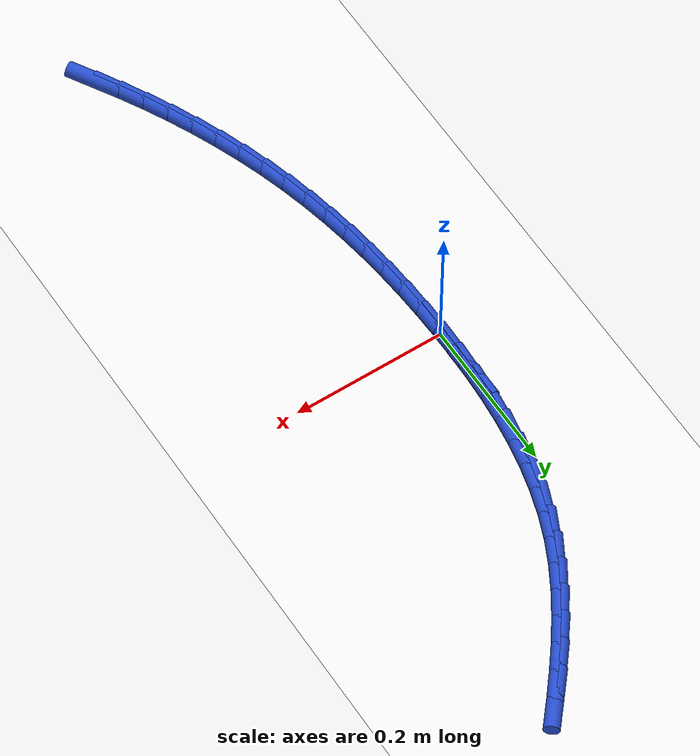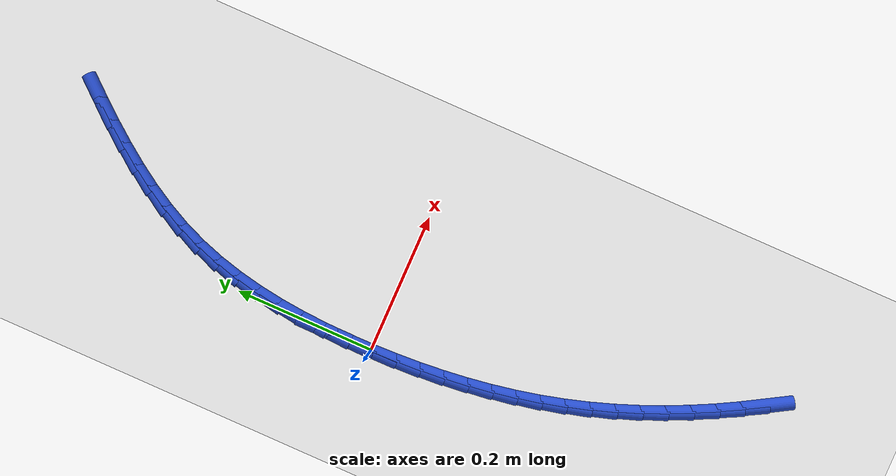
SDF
<sdf version="1.6">
 <world name="default">
  <model name="ground_plane">
   <static>1</static>
   <link name="link">
    <collision name="collision">
     <geometry><plane><normal>0 0 1</normal><size>100 100</size></plane></geometry>
     <surface><friction><ode><mu>100</mu><mu2>50</mu2></ode></friction></surface>
    </collision>
    <visual name="visual">
     <cast_shadows>0</cast_shadows>
     <geometry><plane><normal>0 0 1</normal><size>100 100</size></plane></geometry>
     <material>
      <script><uri>file://media/materials/scripts/gazebo.material</uri><name>Gazebo/WhiteGlow</name></script>
     </material>
    </visual>
   </link>
  </model>
  <model name="line">
   <link name="link_0">
    <pose>-7.37257477290143e-18 9.71445146547012e-17 0.01 0 1.57 -1.562745904130109</pose>
    <collision name="collision">
     <geometry><cylinder><radius>0.01</radius><length>0.08</length></cylinder></geometry>
    </collision>
    <visual name="visual">
     <material>
      <script><name>Gazebo/Blue</name><uri>file://media/materials/scripts/gazebo.material</uri></script>
     </material>
     <geometry><cylinder><radius>0.01</radius><length>0.08</length></cylinder></geometry>
    </visual>
   </link>
   <link name="link_1">
    <pose>-0.0002816956772170364 0.034990658679634766 0.01 0 1.57 1.5496413400267557</pose>
    <collision name="collision">
     <geometry><cylinder><radius>0.01</radius><length>0.08</length></cylinder></geometry>
    </collision>
    <visual name="visual">
     <material>
      <script><name>Gazebo/Blue</name><uri>file://media/materials/scripts/gazebo.material</uri></script>
     </material>
     <geometry><cylinder><radius>0.01</radius><length>0.08</length></cylinder></geometry>
    </visual>
   </link>
   <link name="link_2">
    <pose>0.0004599208998079532 0.07004177684413483 0.01 0 1.57 1.515356323330068</pose>
    <collision name="collision">
     <geometry><cylinder><radius>0.01</radius><length>0.08</length></cylinder></geometry>
    </collision>
    <visual name="visual">
     <material>
      <script><name>Gazebo/Blue</name><uri>file://media/materials/scripts/gazebo.material</uri></script>
     </material>
     <geometry><cylinder><radius>0.01</radius><length>0.08</length></cylinder></geometry>
    </visual>
   </link>
   <link name="link_3">
    <pose>0.0024008203007227034 0.10501490743432369 0.01 0 1.57 1.4756737951249999</pose>
    <collision name="collision">
     <geometry><cylinder><radius>0.01</radius><length>0.08</length></cylinder></geometry>
    </collision>
    <visual name="visual">
     <material>
      <script><name>Gazebo/Blue</name><uri>file://media/materials/scripts/gazebo.material</uri></script>
     </material>
     <geometry><cylinder><radius>0.01</radius><length>0.08</length></cylinder></geometry>
    </visual>
   </link>
   <link name="link_4">
    <pose>0.005716973095174958 0.1397716033910247 0.01 0 1.57 1.4302432019320153</pose>
    <collision name="collision">
     <geometry><cylinder><radius>0.01</radius><length>0.08</length></cylinder></geometry>
    </collision>
    <visual name="visual">
     <material>
      <script><name>Gazebo/Blue</name><uri>file://media/materials/scripts/gazebo.material</uri></script>
     </material>
     <geometry><cylinder><radius>0.01</radius><length>0.08</length></cylinder></geometry>
    </visual>
   </link>
   <link name="link_5">
    <pose>0.010584349852812458 0.1741734176550612 0.01 0 1.57 1.3787126563604786</pose>
    <collision name="collision">
     <geometry><cylinder><radius>0.01</radius><length>0.08</length></cylinder></geometry>
    </collision>
    <visual name="visual">
     <material>
      <script><name>Gazebo/Blue</name><uri>file://media/materials/scripts/gazebo.material</uri></script>
     </material>
     <geometry><cylinder><radius>0.01</radius><length>0.08</length></cylinder></geometry>
    </visual>
   </link>
   <link name="link_6">
    <pose>0.017178921143282948 0.20808190316725653 0.01 0 1.57 1.320773830777461</pose>
    <collision name="collision">
     <geometry><cylinder><radius>0.01</radius><length>0.08</length></cylinder></geometry>
    </collision>
    <visual name="visual">
     <material>
      <script><name>Gazebo/Blue</name><uri>file://media/materials/scripts/gazebo.material</uri></script>
     </material>
     <geometry><cylinder><radius>0.01</radius><length>0.08</length></cylinder></geometry>
    </visual>
   </link>
   <link name="link_7">
    <pose>0.025676657536234167 0.24135861286843402 0.01 0 1.57 1.256223234335195</pose>
    <collision name="collision">
     <geometry><cylinder><radius>0.01</radius><length>0.08</length></cylinder></geometry>
    </collision>
    <visual name="visual">
     <material>
      <script><name>Gazebo/Blue</name><uri>file://media/materials/scripts/gazebo.material</uri></script>
     </material>
     <geometry><cylinder><radius>0.01</radius><length>0.08</length></cylinder></geometry>
    </visual>
   </link>
   <link name="link_8">
    <pose>0.03625352960131386 0.27386509969941714 0.01 0 1.57 1.1851395864691066</pose>
    <collision name="collision">
     <geometry><cylinder><radius>0.01</radius><length>0.08</length></cylinder></geometry>
    </collision>
    <visual name="visual">
     <material>
      <script><name>Gazebo/Blue</name><uri>file://media/materials/scripts/gazebo.material</uri></script>
     </material>
     <geometry><cylinder><radius>0.01</radius><length>0.08</length></cylinder></geometry>
    </visual>
   </link>
   <link name="link_9">
    <pose>0.04908243517271146 0.3054644160317214 0.01 0 1.57 1.1134043254828168</pose>
    <collision name="collision">
     <geometry><cylinder><radius>0.01</radius><length>0.08</length></cylinder></geometry>
    </collision>
    <visual name="visual">
     <material>
      <script><name>Gazebo/Blue</name><uri>file://media/materials/scripts/gazebo.material</uri></script>
     </material>
     <geometry><cylinder><radius>0.01</radius><length>0.08</length></cylinder></geometry>
    </visual>
   </link>
   <link name="link_10">
    <pose>0.06416337652792929 0.33610398365550337 0.01 0 1.57 1.0499142067764813</pose>
    <collision name="collision">
     <geometry><cylinder><radius>0.01</radius><length>0.08</length></cylinder></geometry>
    </collision>
    <visual name="visual">
     <material>
      <script><name>Gazebo/Blue</name><uri>file://media/materials/scripts/gazebo.material</uri></script>
     </material>
     <geometry><cylinder><radius>0.01</radius><length>0.08</length></cylinder></geometry>
    </visual>
   </link>
   <link name="link_11">
    <pose>0.08123476214195655 0.36585887666998373 0.01 0 1.57 0.9954628215977714</pose>
    <collision name="collision">
     <geometry><cylinder><radius>0.01</radius><length>0.08</length></cylinder></geometry>
    </collision>
    <visual name="visual">
     <material>
      <script><name>Gazebo/Blue</name><uri>file://media/materials/scripts/gazebo.material</uri></script>
     </material>
     <geometry><cylinder><radius>0.01</radius><length>0.08</length></cylinder></geometry>
    </visual>
   </link>
   <link name="link_12">
    <pose>0.1000132289008868 0.3948147932548004 0.01 0 1.57 0.9498702573837978</pose>
    <collision name="collision">
     <geometry><cylinder><radius>0.01</radius><length>0.08</length></cylinder></geometry>
    </collision>
    <visual name="visual">
     <material>
      <script><name>Gazebo/Blue</name><uri>file://media/materials/scripts/gazebo.material</uri></script>
     </material>
     <geometry><cylinder><radius>0.01</radius><length>0.08</length></cylinder></geometry>
    </visual>
   </link>
   <link name="link_13">
    <pose>0.1202154136908138 0.42305743158959125 0.01 0 1.57 0.9128253980258968</pose>
    <collision name="collision">
     <geometry><cylinder><radius>0.01</radius><length>0.08</length></cylinder></geometry>
    </collision>
    <visual name="visual">
     <material>
      <script><name>Gazebo/Blue</name><uri>file://media/materials/scripts/gazebo.material</uri></script>
     </material>
     <geometry><cylinder><radius>0.01</radius><length>0.08</length></cylinder></geometry>
    </visual>
   </link>
   <link name="link_14">
    <pose>0.14155795339783128 0.4506724898539948 0.01 0 1.57 0.8839891264557248</pose>
    <collision name="collision">
     <geometry><cylinder><radius>0.01</radius><length>0.08</length></cylinder></geometry>
    </collision>
    <visual name="visual">
     <material>
      <script><name>Gazebo/Blue</name><uri>file://media/materials/scripts/gazebo.material</uri></script>
     </material>
     <geometry><cylinder><radius>0.01</radius><length>0.08</length></cylinder></geometry>
    </visual>
   </link>
   <link name="link_15">
    <pose>0.16375748490803274 0.4777456662276481 0.01 0 1.57 0.863067492049185</pose>
    <collision name="collision">
     <geometry><cylinder><radius>0.01</radius><length>0.08</length></cylinder></geometry>
    </collision>
    <visual name="visual">
     <material>
      <script><name>Gazebo/Blue</name><uri>file://media/materials/scripts/gazebo.material</uri></script>
     </material>
     <geometry><cylinder><radius>0.01</radius><length>0.08</length></cylinder></geometry>
    </visual>
   </link>
   <link name="link_194">
    <pose>0.15000148566835494 -0.5261153125494564 0.01 0 1.57 -1.0386538323608343</pose>
    <collision name="collision">
     <geometry><cylinder><radius>0.01</radius><length>0.08</length></cylinder></geometry>
    </collision>
    <visual name="visual">
     <material>
      <script><name>Gazebo/Blue</name><uri>file://media/materials/scripts/gazebo.material</uri></script>
     </material>
     <geometry><cylinder><radius>0.01</radius><length>0.08</length></cylinder></geometry>
    </visual>
   </link>
   <link name="link_195">
    <pose>0.1326923325780241 -0.49671790606295596 0.01 0 1.57 -1.0700348056108948</pose>
    <collision name="collision">
     <geometry><cylinder><radius>0.01</radius><length>0.08</length></cylinder></geometry>
    </collision>
    <visual name="visual">
     <material>
      <script><name>Gazebo/Blue</name><uri>file://media/materials/scripts/gazebo.material</uri></script>
     </material>
     <geometry><cylinder><radius>0.01</radius><length>0.08</length></cylinder></geometry>
    </visual>
   </link>
   <link name="link_196">
    <pose>0.11613999963422997 -0.46647382769602913 0.01 0 1.57 -1.1018224322151007</pose>
    <collision name="collision">
     <geometry><cylinder><radius>0.01</radius><length>0.08</length></cylinder></geometry>
    </collision>
    <visual name="visual">
     <material>
      <script><name>Gazebo/Blue</name><uri>file://media/materials/scripts/gazebo.material</uri></script>
     </material>
     <geometry><cylinder><radius>0.01</radius><length>0.08</length></cylinder></geometry>
    </visual>
   </link>
   <link name="link_197">
    <pose>0.10043840625081582 -0.43548439316868454 0.01 0 1.57 -1.1343081571914788</pose>
    <collision name="collision">
     <geometry><cylinder><radius>0.01</radius><length>0.08</length></cylinder></geometry>
    </collision>
    <visual name="visual">
     <material>
      <script><name>Gazebo/Blue</name><uri>file://media/materials/scripts/gazebo.material</uri></script>
     </material>
     <geometry><cylinder><radius>0.01</radius><length>0.08</length></cylinder></geometry>
    </visual>
   </link>
   <link name="link_198">
    <pose>0.08568147184162356 -0.40385091820092855 0.01 0 1.57 -1.167781897802273</pose>
    <collision name="collision">
     <geometry><cylinder><radius>0.01</radius><length>0.08</length></cylinder></geometry>
    </collision>
    <visual name="visual">
     <material>
      <script><name>Gazebo/Blue</name><uri>file://media/materials/scripts/gazebo.material</uri></script>
     </material>
     <geometry><cylinder><radius>0.01</radius><length>0.08</length></cylinder></geometry>
    </visual>
   </link>
   <link name="link_199">
    <pose>0.07196311582049567 -0.37167471851276834 0.01 0 1.57 -1.2025379785447408</pose>
    <collision name="collision">
     <geometry><cylinder><radius>0.01</radius><length>0.08</length></cylinder></geometry>
    </collision>
    <visual name="visual">
     <material>
      <script><name>Gazebo/Blue</name><uri>file://media/materials/scripts/gazebo.material</uri></script>
     </material>
     <geometry><cylinder><radius>0.01</radius><length>0.08</length></cylinder></geometry>
    </visual>
   </link>
   <link name="link_200">
    <pose>0.05937725760127451 -0.33905710982421133 0.01 0 1.57 -1.2388801500752804</pose>
    <collision name="collision">
     <geometry><cylinder><radius>0.01</radius><length>0.08</length></cylinder></geometry>
    </collision>
    <visual name="visual">
     <material>
      <script><name>Gazebo/Blue</name><uri>file://media/materials/scripts/gazebo.material</uri></script>
     </material>
     <geometry><cylinder><radius>0.01</radius><length>0.08</length></cylinder></geometry>
    </visual>
   </link>
   <link name="link_201">
    <pose>0.04801781659780249 -0.30609940785526457 0.01 0 1.57 -1.2769663433081968</pose>
    <collision name="collision">
     <geometry><cylinder><radius>0.01</radius><length>0.08</length></cylinder></geometry>
    </collision>
    <visual name="visual">
     <material>
      <script><name>Gazebo/Blue</name><uri>file://media/materials/scripts/gazebo.material</uri></script>
     </material>
     <geometry><cylinder><radius>0.01</radius><length>0.08</length></cylinder></geometry>
    </visual>
   </link>
   <link name="link_202">
    <pose>0.03797149503831953 -0.27289815451309346 0.01 0 1.57 -1.3150896934541534</pose>
    <collision name="collision">
     <geometry><cylinder><radius>0.01</radius><length>0.08</length></cylinder></geometry>
    </collision>
    <visual name="visual">
     <material>
      <script><name>Gazebo/Blue</name><uri>file://media/materials/scripts/gazebo.material</uri></script>
     </material>
     <geometry><cylinder><radius>0.01</radius><length>0.08</length></cylinder></geometry>
    </visual>
   </link>
   <link name="link_203">
    <pose>0.029238277960410133 -0.23949253255393194 0.01 0 1.57 -1.3518768134103682</pose>
    <collision name="collision">
     <geometry><cylinder><radius>0.01</radius><length>0.08</length></cylinder></geometry>
    </collision>
    <visual name="visual">
     <material>
      <script><name>Gazebo/Blue</name><uri>file://media/materials/scripts/gazebo.material</uri></script>
     </material>
     <geometry><cylinder><radius>0.01</radius><length>0.08</length></cylinder></geometry>
    </visual>
   </link>
   <link name="link_204">
    <pose>0.021760836287910815 -0.20588381427039712 0.01 0 1.57 -1.3871514689918878</pose>
    <collision name="collision">
     <geometry><cylinder><radius>0.01</radius><length>0.08</length></cylinder></geometry>
    </collision>
    <visual name="visual">
     <material>
      <script><name>Gazebo/Blue</name><uri>file://media/materials/scripts/gazebo.material</uri></script>
     </material>
     <geometry><cylinder><radius>0.01</radius><length>0.08</length></cylinder></geometry>
    </visual>
   </link>
   <link name="link_205">
    <pose>0.015480822346419312 -0.1720725982025364 0.01 0 1.57 -1.4207861432820401</pose>
    <collision name="collision">
     <geometry><cylinder><radius>0.01</radius><length>0.08</length></cylinder></geometry>
    </collision>
    <visual name="visual">
     <material>
      <script><name>Gazebo/Blue</name><uri>file://media/materials/scripts/gazebo.material</uri></script>
     </material>
     <geometry><cylinder><radius>0.01</radius><length>0.08</length></cylinder></geometry>
    </visual>
   </link>
   <link name="link_206">
    <pose>0.010339888461533362 -0.13805948289039705 0.01 0 1.57 -1.4526793962009987</pose>
    <collision name="collision">
     <geometry><cylinder><radius>0.01</radius><length>0.08</length></cylinder></geometry>
    </collision>
    <visual name="visual">
     <material>
      <script><name>Gazebo/Blue</name><uri>file://media/materials/scripts/gazebo.material</uri></script>
     </material>
     <geometry><cylinder><radius>0.01</radius><length>0.08</length></cylinder></geometry>
    </visual>
   </link>
   <link name="link_207">
    <pose>0.006279686958850714 -0.10384506687402645 0.01 0 1.57 -1.4827546795707116</pose>
    <collision name="collision">
     <geometry><cylinder><radius>0.01</radius><length>0.08</length></cylinder></geometry>
    </collision>
    <visual name="visual">
     <material>
      <script><name>Gazebo/Blue</name><uri>file://media/materials/scripts/gazebo.material</uri></script>
     </material>
     <geometry><cylinder><radius>0.01</radius><length>0.08</length></cylinder></geometry>
    </visual>
   </link>
   <link name="link_208">
    <pose>0.0032418701639691043 -0.0694299486934718 0.01 0 1.57 -1.510958372551283</pose>
    <collision name="collision">
     <geometry><cylinder><radius>0.01</radius><length>0.08</length></cylinder></geometry>
    </collision>
    <visual name="visual">
     <material>
      <script><name>Gazebo/Blue</name><uri>file://media/materials/scripts/gazebo.material</uri></script>
     </material>
     <geometry><cylinder><radius>0.01</radius><length>0.08</length></cylinder></geometry>
    </visual>
   </link>
   <link name="link_209">
    <pose>0.0011680904024862434 -0.034814726888779665 0.01 0 1.57 -1.5372572905338693</pose>
    <collision name="collision">
     <geometry><cylinder><radius>0.01</radius><length>0.08</length></cylinder></geometry>
    </collision>
    <visual name="visual">
     <material>
      <script><name>Gazebo/Blue</name><uri>file://media/materials/scripts/gazebo.material</uri></script>
     </material>
     <geometry><cylinder><radius>0.01</radius><length>0.08</length></cylinder></geometry>
    </visual>
   </link>
   <link name="link_210">
    <pose>-1.474514954580286e-17 2.2898349882893854e-16 0.01 0 1.57 -1.561635902277559</pose>
    <collision name="collision">
     <geometry><cylinder><radius>0.01</radius><length>0.08</length></cylinder></geometry>
    </collision>
    <visual name="visual">
     <material>
      <script><name>Gazebo/Blue</name><uri>file://media/materials/scripts/gazebo.material</uri></script>
     </material>
     <geometry><cylinder><radius>0.01</radius><length>0.08</length></cylinder></geometry>
    </visual>
   </link>
   <link name="link_211">
    <pose>-0.000320748717892041 0.035013633432822995 0.01 0 1.57 1.5574991987329878</pose>
    <collision name="collision">
     <geometry><cylinder><radius>0.01</radius><length>0.08</length></cylinder></geometry>
    </collision>
    <visual name="visual">
     <material>
      <script><name>Gazebo/Blue</name><uri>file://media/materials/scripts/gazebo.material</uri></script>
     </material>
     <geometry><cylinder><radius>0.01</radius><length>0.08</length></cylinder></geometry>
    </visual>
   </link>
   <link name="link_212">
    <pose>0.00014749657440798342 0.07022557486964215 0.01 0 1.57 1.5686960042586249</pose>
    <collision name="collision">
     <geometry><cylinder><radius>0.01</radius><length>0.08</length></cylinder></geometry>
    </collision>
    <visual name="visual">
     <material>
      <script><name>Gazebo/Blue</name><uri>file://media/materials/scripts/gazebo.material</uri></script>
     </material>
     <geometry><cylinder><radius>0.01</radius><length>0.08</length></cylinder></geometry>
    </visual>
   </link>
  </model>
 </world>
</sdf>
